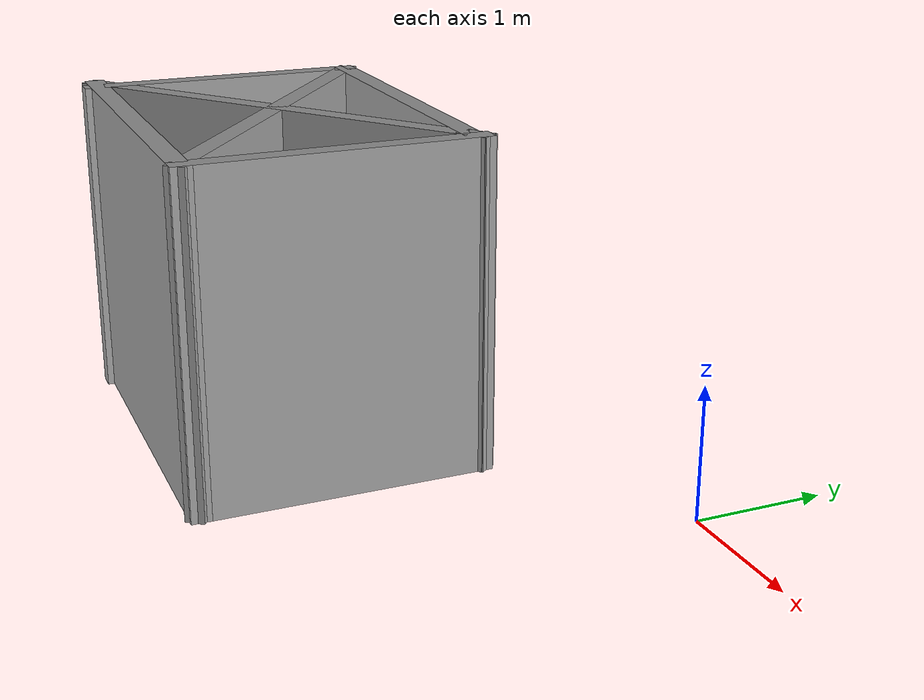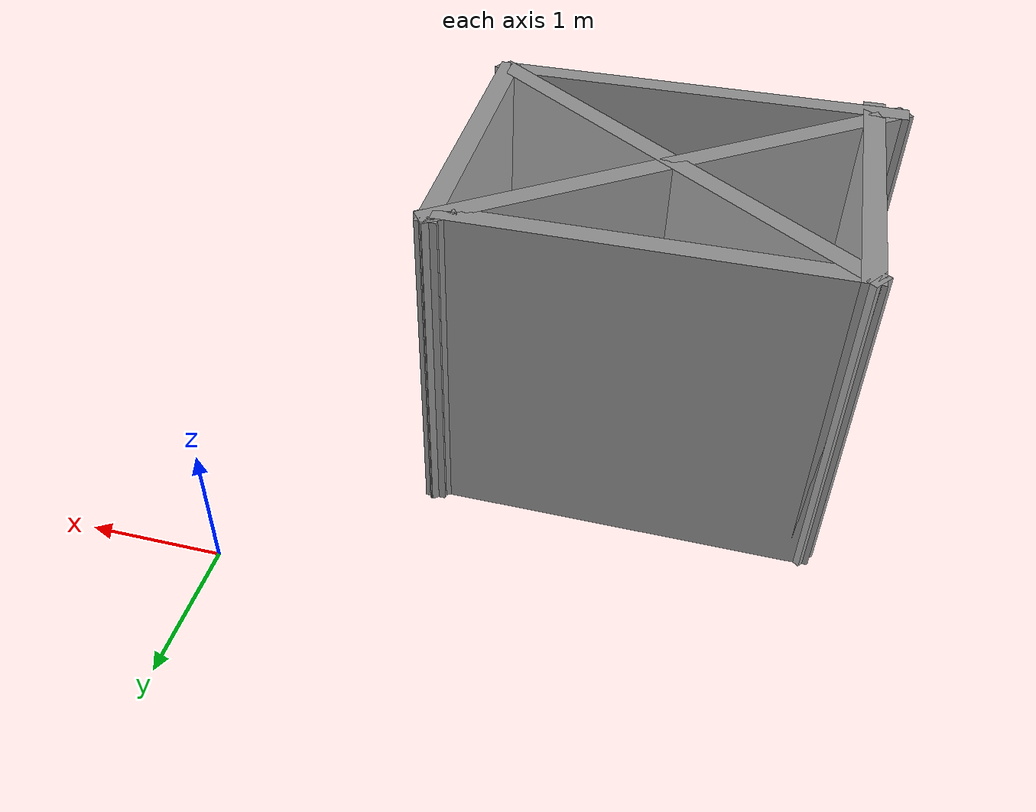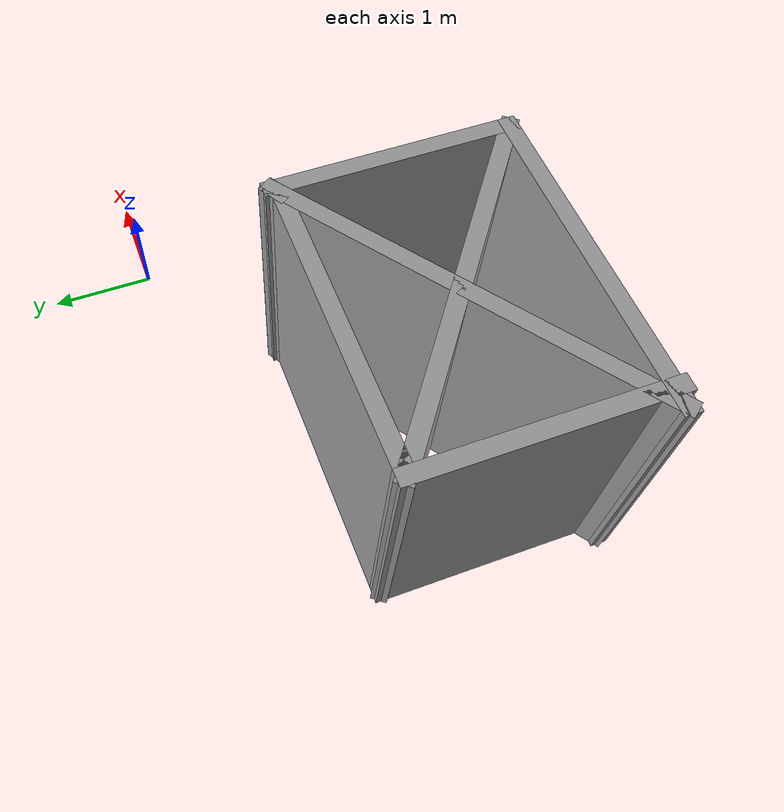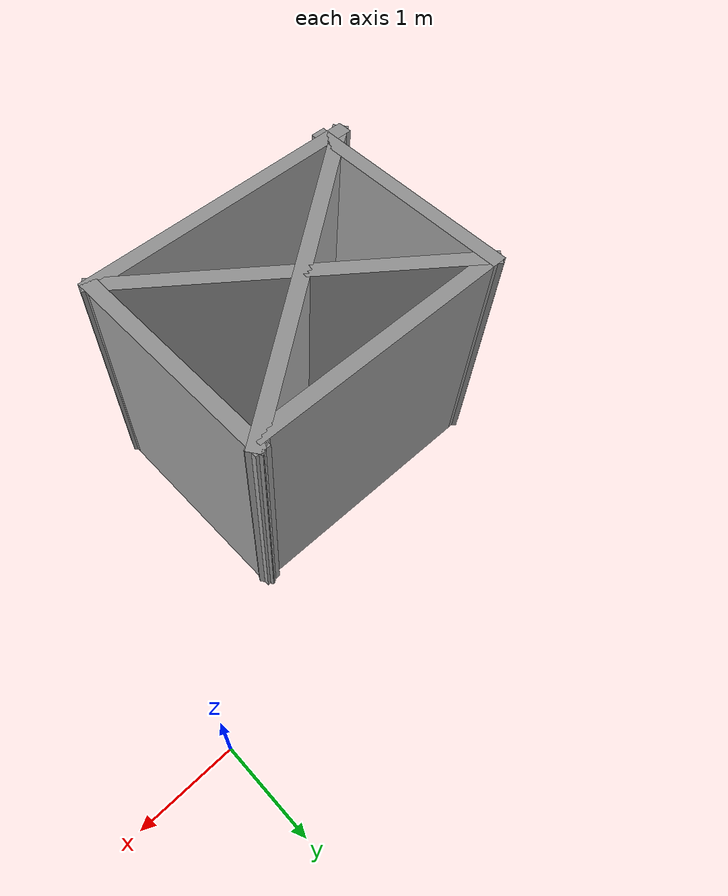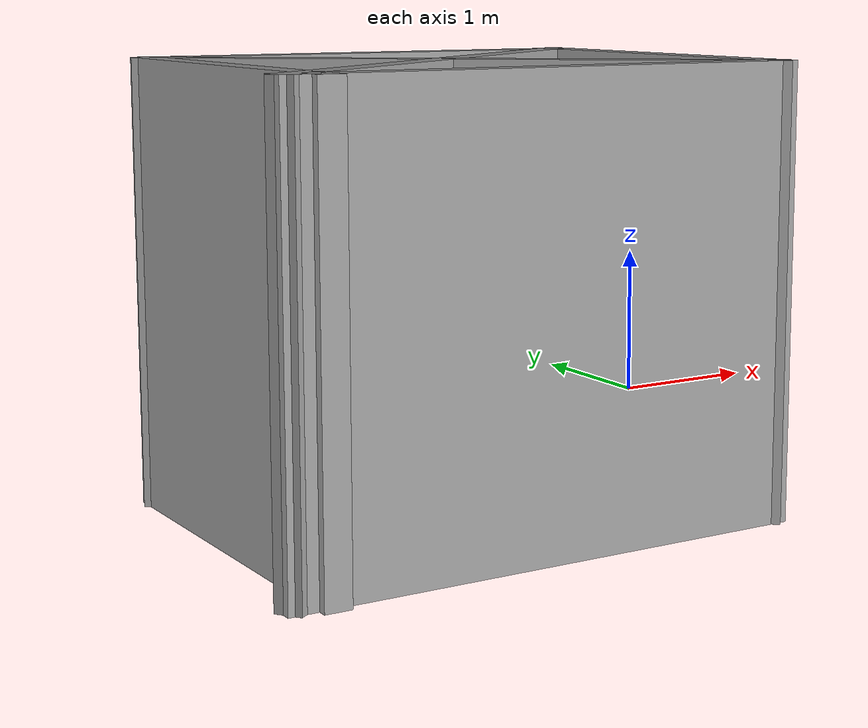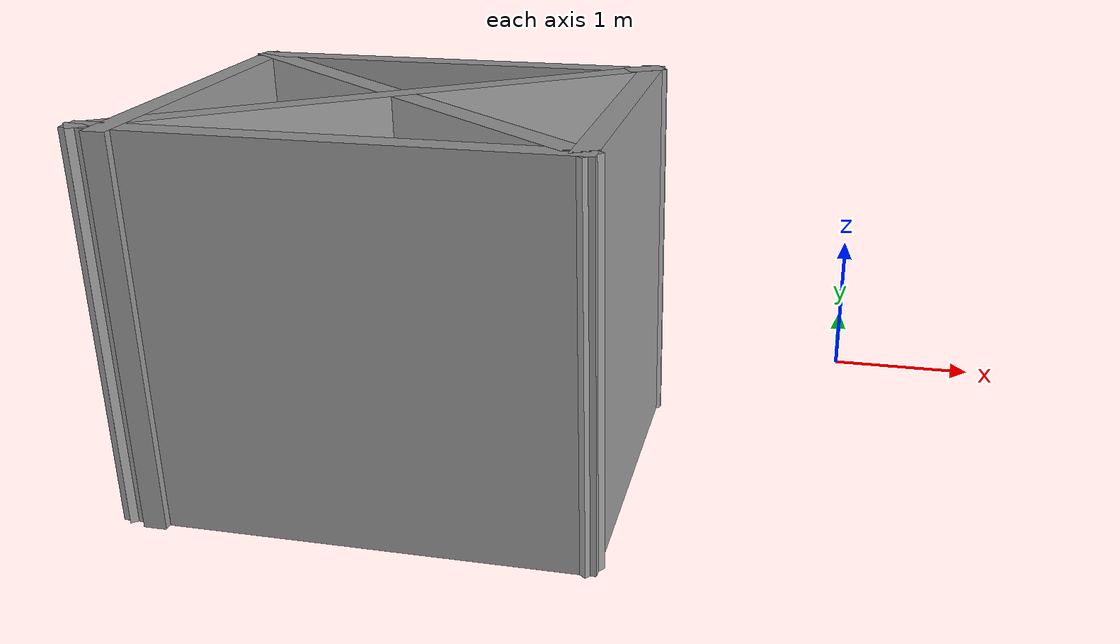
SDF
<?xml version='1.0'?>
<sdf version='1.7'>
  <model name='my_wall'>
    <pose>-2.15413 -1.6225 0 0 -0 0</pose>
    <link name='Wall_0'>
      <collision name='Wall_0_Collision'>
        <geometry>
          <box>
            <size>2.25 0.15 2.5</size>
          </box>
        </geometry>
        <pose>0 0 1.25 0 -0 0</pose>
      </collision>
      <visual name='Wall_0_Visual'>
        <pose>0 0 1.25 0 -0 0</pose>
        <geometry>
          <box>
            <size>2.25 0.15 2.5</size>
          </box>
        </geometry>
        <material>
          <script>
            <uri>file://media/materials/scripts/gazebo.material</uri>
            <name>Gazebo/Grey</name>
          </script>
          <ambient>1 1 1 1</ambient>
        </material>
        <meta>
          <layer>0</layer>
        </meta>
      </visual>
      <pose>-1.88587 -0.4975 0 0 -0 1.5708</pose>
    </link>
    <link name='Wall_1'>
      <collision name='Wall_1_Collision'>
        <geometry>
          <box>
            <size>2.75 0.15 2.5</size>
          </box>
        </geometry>
        <pose>0 0 1.25 0 -0 0</pose>
      </collision>
      <visual name='Wall_1_Visual'>
        <pose>0 0 1.25 0 -0 0</pose>
        <geometry>
          <box>
            <size>2.75 0.15 2.5</size>
          </box>
        </geometry>
        <material>
          <script>
            <uri>file://media/materials/scripts/gazebo.material</uri>
            <name>Gazebo/Grey</name>
          </script>
          <ambient>1 1 1 1</ambient>
        </material>
        <meta>
          <layer>0</layer>
        </meta>
      </visual>
      <pose>-0.585867 0.5525 0 0 -0 0</pose>
    </link>
    <link name='Wall_2'>
      <collision name='Wall_2_Collision'>
        <geometry>
          <box>
            <size>0.25 0.15 2.5</size>
          </box>
        </geometry>
        <pose>0 0 1.25 0 -0 0</pose>
      </collision>
      <visual name='Wall_2_Visual'>
        <pose>0 0 1.25 0 -0 0</pose>
        <geometry>
          <box>
            <size>0.25 0.15 2.5</size>
          </box>
        </geometry>
        <material>
          <script>
            <uri>file://media/materials/scripts/gazebo.material</uri>
            <name>Gazebo/Grey</name>
          </script>
          <ambient>1 1 1 1</ambient>
        </material>
        <meta>
          <layer>0</layer>
        </meta>
      </visual>
      <pose>0.757435 0.5775 0 0 -0 0.523599</pose>
    </link>
    <link name='Wall_3'>
      <collision name='Wall_3_Collision'>
        <geometry>
          <box>
            <size>2.25 0.15 2.5</size>
          </box>
        </geometry>
        <pose>0 0 1.25 0 -0 0</pose>
      </collision>
      <visual name='Wall_3_Visual'>
        <pose>0 0 1.25 0 -0 0</pose>
        <geometry>
          <box>
            <size>2.25 0.15 2.5</size>
          </box>
        </geometry>
        <material>
          <script>
            <uri>file://media/materials/scripts/gazebo.material</uri>
            <name>Gazebo/Grey</name>
          </script>
          <ambient>1 1 1 1</ambient>
        </material>
        <meta>
          <layer>0</layer>
        </meta>
      </visual>
      <pose>0.800736 -0.4475 0 0 -0 -1.5708</pose>
    </link>
    <link name='Wall_4'>
      <collision name='Wall_4_Collision'>
        <geometry>
          <box>
            <size>3 0.15 2.5</size>
          </box>
        </geometry>
        <pose>0 0 1.25 0 -0 0</pose>
      </collision>
      <visual name='Wall_4_Visual'>
        <pose>0 0 1.25 0 -0 0</pose>
        <geometry>
          <box>
            <size>3 0.15 2.5</size>
          </box>
        </geometry>
        <material>
          <script>
            <uri>file://media/materials/scripts/gazebo.material</uri>
            <name>Gazebo/Grey</name>
          </script>
          <ambient>1 1 1 1</ambient>
        </material>
        <meta>
          <layer>0</layer>
        </meta>
      </visual>
      <pose>-0.624264 -1.4975 0 0 -0 3.14159</pose>
    </link>
    <link name='Wall_5'>
      <collision name='Wall_5_Collision'>
        <geometry>
          <box>
            <size>3.69013 0.15 2.5</size>
          </box>
        </geometry>
        <pose>0 0 1.25 0 -0 0</pose>
      </collision>
      <visual name='Wall_5_Visual'>
        <pose>0 0 1.25 0 -0 0</pose>
        <geometry>
          <box>
            <size>3.69013 0.15 2.5</size>
          </box>
        </geometry>
        <material>
          <script>
            <uri>file://media/materials/scripts/gazebo.material</uri>
            <name>Gazebo/Grey</name>
          </script>
          <ambient>1 1 1 1</ambient>
        </material>
        <meta>
          <layer>0</layer>
        </meta>
      </visual>
      <pose>-0.624264 -0.4475 0 0 -0 0.635027</pose>
    </link>
    <link name='Wall_6'>
      <collision name='Wall_6_Collision'>
        <geometry>
          <box>
            <size>2.25 0.15 2.5</size>
          </box>
        </geometry>
        <pose>0 0 1.25 0 -0 0</pose>
      </collision>
      <visual name='Wall_6_Visual'>
        <pose>0 0 1.25 0 -0 0</pose>
        <geometry>
          <box>
            <size>2.25 0.15 2.5</size>
          </box>
        </geometry>
        <material>
          <script>
            <uri>file://media/materials/scripts/gazebo.material</uri>
            <name>Gazebo/Grey</name>
          </script>
          <ambient>1 1 1 1</ambient>
        </material>
        <meta>
          <layer>0</layer>
        </meta>
      </visual>
      <pose>0.800736 -0.4475 0 0 -0 -1.5708</pose>
    </link>
    <link name='Wall_7'>
      <collision name='Wall_7_Collision'>
        <geometry>
          <box>
            <size>3.5294 0.15 2.5</size>
          </box>
        </geometry>
        <pose>0 0 1.25 0 -0 0</pose>
      </collision>
      <visual name='Wall_7_Visual'>
        <pose>0 0 1.25 0 -0 0</pose>
        <geometry>
          <box>
            <size>3.5294 0.15 2.5</size>
          </box>
        </geometry>
        <material>
          <script>
            <uri>file://media/materials/scripts/gazebo.material</uri>
            <name>Gazebo/Grey</name>
          </script>
          <ambient>1 1 1 1</ambient>
        </material>
        <meta>
          <layer>0</layer>
        </meta>
      </visual>
      <pose>-0.542565 -0.4725 0 0 -0 2.48979</pose>
    </link>
    <static>1</static>
  </model>
</sdf>
